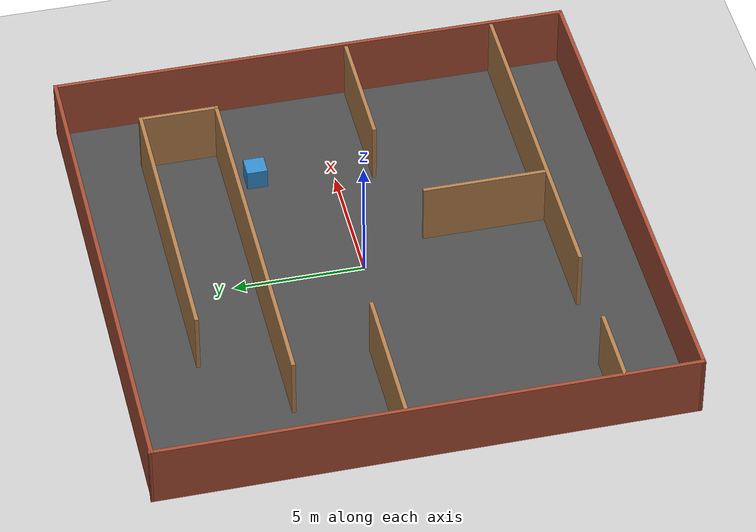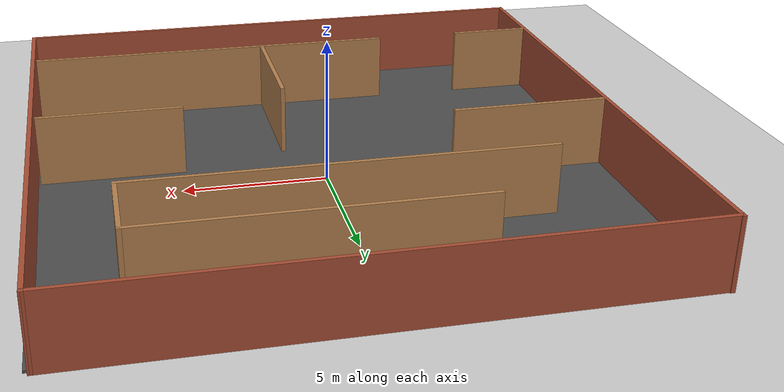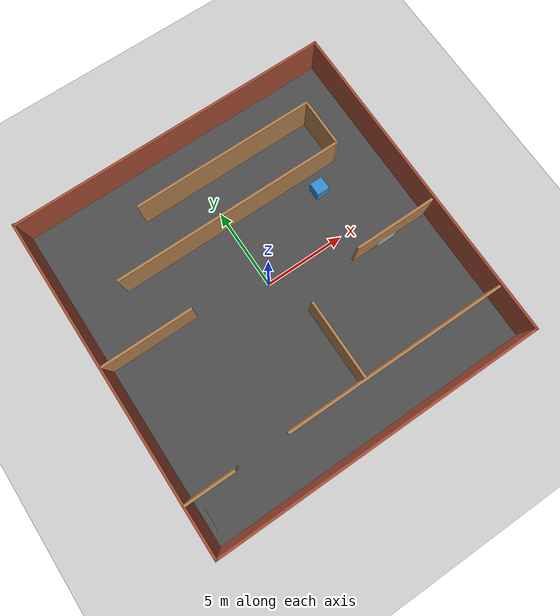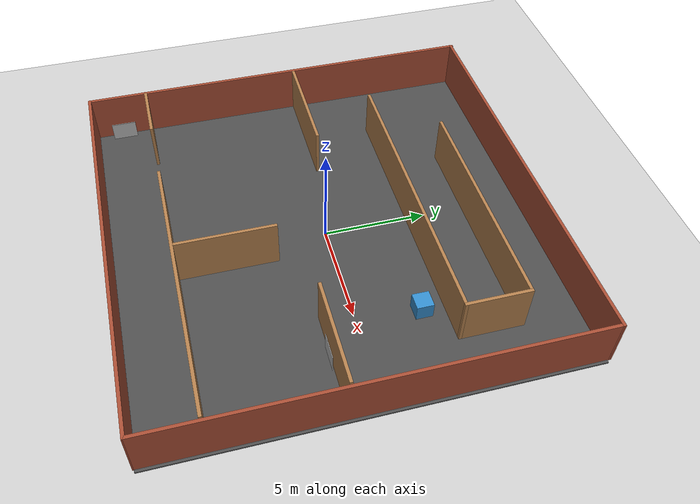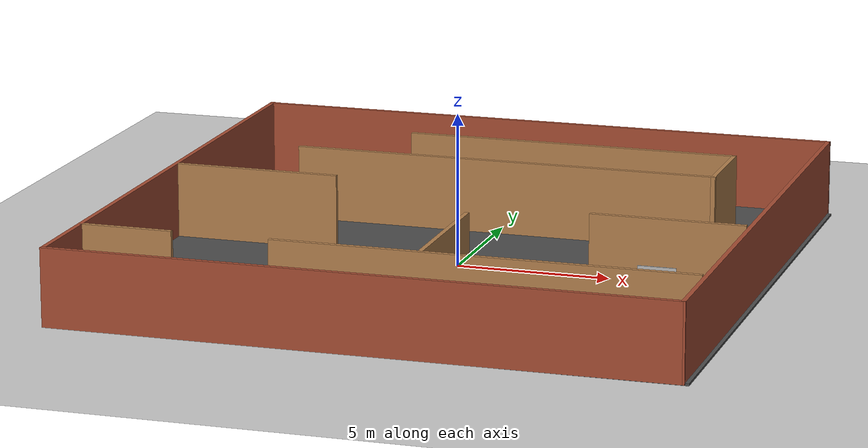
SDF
<sdf version="1.7">
 <world name="default">
  <light name="sun" type="directional">
   <pose>0 0 10 0 -0 0</pose>
   <diffuse>0.8 0.8 0.8 1</diffuse>
   <specular>0.2 0.2 0.2 1</specular>
   <attenuation>
    <range>1000</range>
    <constant>0.9</constant>
    <linear>0.01</linear>
    <quadratic>0.001</quadratic>
   </attenuation>
   <direction>-0.5 0.1 -0.9</direction>
   <spot><inner_angle>0</inner_angle><outer_angle>0</outer_angle><falloff>0</falloff></spot>
  </light>
  <model name="ground_plane">
   <static>1</static>
   <link name="link">
    <collision name="collision">
     <geometry><plane><normal>0 0 1</normal><size>100 100</size></plane></geometry>
     <surface><friction><ode><mu>100</mu><mu2>50</mu2></ode></friction></surface>
    </collision>
    <visual name="visual">
     <cast_shadows>0</cast_shadows>
     <geometry><plane><normal>0 0 1</normal><size>100 100</size></plane></geometry>
     <material>
      <script><uri>file://media/materials/scripts/gazebo.material</uri><name>Gazebo/Grey</name></script>
     </material>
    </visual>
   </link>
  </model>
  <gravity>0 0 -9.8</gravity>
  <magnetic_field>6e-06 2.3e-05 -4.2e-05</magnetic_field>
  <atmosphere type="adiabatic"/>
  <physics name="default_physics" default="0" type="ode">
   <max_step_size>0.001</max_step_size>
   <real_time_factor>1</real_time_factor>
   <real_time_update_rate>1000</real_time_update_rate>
  </physics>
  <scene><ambient>0.4 0.4 0.4 1</ambient><background>0.7 0.7 0.7 1</background><shadows>1</shadows></scene>
  <spherical_coordinates>
   <surface_model>EARTH_WGS84</surface_model>
   <latitude_deg>0</latitude_deg>
   <longitude_deg>0</longitude_deg>
   <elevation>0</elevation>
   <heading_deg>0</heading_deg>
  </spherical_coordinates>
  <model name="Labyrinth_Practice">
   <pose>0.01018 -0.145179 0 0 -0 0</pose>
   <link name="Wall_1">
    <collision name="Wall_1_Collision">
     <geometry><box><size>20.25 0.15 2.5</size></box></geometry>
     <pose>0 0 1.25 0 -0 0</pose>
    </collision>
    <visual name="Wall_1_Visual">
     <pose>0 0 1.25 0 -0 0</pose>
     <geometry><box><size>20.25 0.15 2.5</size></box></geometry>
     <material>
      <script><uri>file://media/materials/scripts/gazebo.material</uri><name>Gazebo/Bricks</name></script>
      <ambient>1 1 1 1</ambient>
     </material>
     <meta><layer>0</layer></meta>
    </visual>
    <pose>9.88982 0.035179 0 0 -0 1.5708</pose>
   </link>
   <link name="Wall_10">
    <collision name="Wall_10_Collision">
     <geometry><box><size>4.75 0.15 2.5</size></box></geometry>
     <pose>0 0 1.25 0 -0 0</pose>
    </collision>
    <visual name="Wall_10_Visual">
     <pose>0 0 1.25 0 -0 0</pose>
     <geometry><box><size>4.75 0.15 2.5</size></box></geometry>
     <material>
      <script><uri>file://media/materials/scripts/gazebo.material</uri><name>Gazebo/Wood</name></script>
      <ambient>1 1 1 1</ambient>
     </material>
     <meta><layer>0</layer></meta>
    </visual>
    <pose>1.06782 -4.75082 0 0 -0 -1.5708</pose>
   </link>
   <link name="Wall_12">
    <collision name="Wall_12_Collision">
     <geometry><box><size>11.25 0.15 2.5</size></box></geometry>
     <pose>0 0 1.25 0 -0 0</pose>
    </collision>
    <visual name="Wall_12_Visual">
     <pose>0 0 1.25 0 -0 0</pose>
     <geometry><box><size>11.25 0.15 2.5</size></box></geometry>
     <material>
      <script><uri>file://media/materials/scripts/gazebo.material</uri><name>Gazebo/Wood</name></script>
      <ambient>1 1 1 1</ambient>
     </material>
     <meta><layer>0</layer></meta>
    </visual>
    <pose>1.78782 7.21718 0 0 -0 0</pose>
   </link>
   <link name="Wall_13">
    <collision name="Wall_13_Collision">
     <geometry><box><size>3.09024 0.15 2.5</size></box></geometry>
     <pose>0 0 1.25 0 -0 0</pose>
    </collision>
    <visual name="Wall_13_Visual">
     <pose>0 0 1.25 0 -0 0</pose>
     <geometry><box><size>3.09024 0.15 2.5</size></box></geometry>
     <material>
      <script><uri>file://media/materials/scripts/gazebo.material</uri><name>Gazebo/Wood</name></script>
      <ambient>1 1 1 1</ambient>
     </material>
     <meta><layer>0</layer></meta>
    </visual>
    <pose>7.33782 5.74718 0 0 -0 -1.5708</pose>
   </link>
   <link name="Wall_14">
    <collision name="Wall_14_Collision">
     <geometry><box><size>14.25 0.15 2.5</size></box></geometry>
     <pose>0 0 1.25 0 -0 0</pose>
    </collision>
    <visual name="Wall_14_Visual">
     <pose>0 0 1.25 0 -0 0</pose>
     <geometry><box><size>14.25 0.15 2.5</size></box></geometry>
     <material>
      <script><uri>file://media/materials/scripts/gazebo.material</uri><name>Gazebo/Wood</name></script>
      <ambient>1 1 1 1</ambient>
     </material>
     <meta><layer>0</layer></meta>
    </visual>
    <pose>0.287943 4.27706 0 0 -0 -3.14158</pose>
   </link>
   <link name="Wall_16">
    <collision name="Wall_16_Collision">
     <geometry><box><size>5.5 0.15 2.5</size></box></geometry>
     <pose>0 0 1.25 0 -0 0</pose>
    </collision>
    <visual name="Wall_16_Visual">
     <pose>0 0 1.25 0 -0 0</pose>
     <geometry><box><size>5.5 0.15 2.5</size></box></geometry>
     <material>
      <script><uri>file://media/materials/scripts/gazebo.material</uri><name>Gazebo/Wood</name></script>
      <ambient>1 1 1 1</ambient>
     </material>
     <meta><layer>0</layer></meta>
    </visual>
    <pose>-7.08218 0.851179 0 0 -0 0</pose>
   </link>
   <link name="Wall_18">
    <collision name="Wall_18_Collision">
     <geometry><box><size>5 0.15 2.5</size></box></geometry>
     <pose>0 0 1.25 0 -0 0</pose>
    </collision>
    <visual name="Wall_18_Visual">
     <pose>0 0 1.25 0 -0 0</pose>
     <geometry><box><size>5 0.15 2.5</size></box></geometry>
     <material>
      <script><uri>file://media/materials/scripts/gazebo.material</uri><name>Gazebo/Wood</name></script>
      <ambient>1 1 1 1</ambient>
     </material>
     <meta><layer>0</layer></meta>
    </visual>
    <pose>7.23782 -1.34282 0 0 -0 0</pose>
   </link>
   <link name="Wall_2">
    <collision name="Wall_2_Collision">
     <geometry><box><size>19.9297 0.15 2.5</size></box></geometry>
     <pose>0 0 1.25 0 -0 0</pose>
    </collision>
    <visual name="Wall_2_Visual">
     <pose>0 0 1.25 0 -0 0</pose>
     <geometry><box><size>19.9297 0.15 2.5</size></box></geometry>
     <material>
      <script><uri>file://media/materials/scripts/gazebo.material</uri><name>Gazebo/Bricks</name></script>
      <ambient>1 1 1 1</ambient>
     </material>
     <meta><layer>0</layer></meta>
    </visual>
    <pose>0 10.05 0 0 -0 -3.13804</pose>
   </link>
   <link name="Wall_3">
    <collision name="Wall_3_Collision">
     <geometry><box><size>20.25 0.15 2.5</size></box></geometry>
     <pose>0 0 1.25 0 -0 0</pose>
    </collision>
    <visual name="Wall_3_Visual">
     <pose>0 0 1.25 0 -0 0</pose>
     <geometry><box><size>20.25 0.15 2.5</size></box></geometry>
     <material>
      <script><uri>file://media/materials/scripts/gazebo.material</uri><name>Gazebo/Bricks</name></script>
      <ambient>1 1 1 1</ambient>
     </material>
     <meta><layer>0</layer></meta>
    </visual>
    <pose>-9.88982 0 0 0 -0 -1.5708</pose>
   </link>
   <link name="Wall_4">
    <collision name="Wall_4_Collision">
     <geometry><box><size>19.9297 0.15 2.5</size></box></geometry>
     <pose>0 0 1.25 0 -0 0</pose>
    </collision>
    <visual name="Wall_4_Visual">
     <pose>0 0 1.25 0 -0 0</pose>
     <geometry><box><size>19.9297 0.15 2.5</size></box></geometry>
     <material>
      <script><uri>file://media/materials/scripts/gazebo.material</uri><name>Gazebo/Bricks</name></script>
      <ambient>1 1 1 1</ambient>
     </material>
     <meta><layer>0</layer></meta>
    </visual>
    <pose>0 -10.05 0 0 -0 0.003557</pose>
   </link>
   <link name="Wall_6">
    <collision name="Wall_6_Collision">
     <geometry><box><size>13.5 0.15 2.5</size></box></geometry>
     <pose>0 0 1.25 0 -0 0</pose>
    </collision>
    <visual name="Wall_6_Visual">
     <pose>0 0 1.25 0 -0 0</pose>
     <geometry><box><size>13.5 0.15 2.5</size></box></geometry>
     <material>
      <script><uri>file://media/materials/scripts/gazebo.material</uri><name>Gazebo/Wood</name></script>
      <ambient>1 1 1 1</ambient>
     </material>
     <meta><layer>0</layer></meta>
    </visual>
    <pose>3.00682 -7.17482 0 0 -0 3.14159</pose>
   </link>
   <link name="Wall_8">
    <collision name="Wall_8_Collision">
     <geometry><box><size>3 0.15 2.5</size></box></geometry>
     <pose>0 0 1.25 0 -0 0</pose>
    </collision>
    <visual name="Wall_8_Visual">
     <pose>0 0 1.25 0 -0 0</pose>
     <geometry><box><size>3 0.15 2.5</size></box></geometry>
     <material>
      <script><uri>file://media/materials/scripts/gazebo.material</uri><name>Gazebo/Wood</name></script>
      <ambient>1 1 1 1</ambient>
     </material>
     <meta><layer>0</layer></meta>
    </visual>
    <pose>-8.38518 -7.17482 0 0 -0 0</pose>
   </link>
   <static>1</static>
  </model>
  <model name="asphalt_plane">
   <static>1</static>
   <link name="link">
    <collision name="collision"><geometry><box><size>20 20 0.1</size></box></geometry></collision>
    <visual name="visual">
     <cast_shadows>0</cast_shadows>
     <geometry><box><size>20 20 0.1</size></box></geometry>
     <material>
      <script>
       <uri>model://asphalt_plane/materials/scripts</uri>
       <uri>model://asphalt_plane/materials/textures</uri>
       <name>vrc/asphalt</name>
      </script>
     </material>
    </visual>
   </link>
   <pose>0.101273 -0.167262 0 0 -0 0</pose>
  </model>
  <model name="wall">
   <link name="link_0">
    <inertial>
     <mass>0.0370544</mass>
     <inertia>
      <ixx>0.0074647</ixx>
      <ixy>0</ixy>
      <ixz>0</ixz>
      <iyy>0.00273036</iyy>
      <iyz>0</iyz>
      <izz>0.00474062</izz>
     </inertia>
    </inertial>
    <visual name="visual">
     <geometry><box><size>0.031883 1.23864 0.93979</size></box></geometry>
     <material>
      <lighting>1</lighting>
      <script>
       <uri>model://wall/materials/scripts</uri>
       <uri>model://wall/materials/textures</uri>
       <name>Labyrinth/Aruco</name>
      </script>
      <shader type="pixel"/>
     </material>
    </visual>
    <collision name="collision">
     <geometry><box><size>0.031883 1.23864 0.93979</size></box></geometry>
     <surface>
      <friction>
       <ode><mu>1</mu><mu2>1</mu2><fdir1>0 0 0</fdir1><slip1>0</slip1><slip2>0</slip2></ode>
       <torsional>
        <coefficient>1</coefficient>
        <patch_radius>0</patch_radius>
        <surface_radius>0</surface_radius>
        <use_patch_radius>1</use_patch_radius>
        <ode><slip>0</slip></ode>
       </torsional>
      </friction>
      <bounce><restitution_coefficient>0</restitution_coefficient><threshold>1e+06</threshold></bounce>
      <contact>
       <collide_without_contact>0</collide_without_contact>
       <collide_without_contact_bitmask>1</collide_without_contact_bitmask>
       <collide_bitmask>1</collide_bitmask>
       <ode>
        <soft_cfm>0</soft_cfm>
        <soft_erp>0.2</soft_erp>
        <kp>1e+13</kp>
        <kd>1</kd>
        <max_vel>0.01</max_vel>
        <min_depth>0</min_depth>
       </ode>
       <bullet>
        <split_impulse>1</split_impulse>
        <split_impulse_penetration_threshold>-0.01</split_impulse_penetration_threshold>
        <soft_cfm>0</soft_cfm>
        <soft_erp>0.2</soft_erp>
        <kp>1e+13</kp>
        <kd>1</kd>
       </bullet>
      </contact>
     </surface>
    </collision>
   </link>
   <static>0</static>
   <pose>-9.50664 -8.76722 0.519895 0 7e-06 -3e-06</pose>
  </model>
  <model name="wall_0">
   <link name="link_0">
    <inertial>
     <mass>0.0370544</mass>
     <inertia>
      <ixx>0.0074647</ixx>
      <ixy>0</ixy>
      <ixz>0</ixz>
      <iyy>0.00273036</iyy>
      <iyz>0</iyz>
      <izz>0.00474062</izz>
     </inertia>
    </inertial>
    <visual name="visual">
     <geometry><box><size>0.031883 1.23864 0.93979</size></box></geometry>
     <material>
      <lighting>1</lighting>
      <script>
       <uri>model://wall_1/materials/scripts</uri>
       <uri>model://wall_1/materials/textures</uri>
       <name>Labyrinth/Aruco_1</name>
      </script>
      <shader type="pixel"/>
     </material>
    </visual>
    <collision name="collision">
     <geometry><box><size>0.031883 1.23864 0.93979</size></box></geometry>
     <surface>
      <friction>
       <ode><mu>1</mu><mu2>1</mu2><fdir1>0 0 0</fdir1><slip1>0</slip1><slip2>0</slip2></ode>
       <torsional>
        <coefficient>1</coefficient>
        <patch_radius>0</patch_radius>
        <surface_radius>0</surface_radius>
        <use_patch_radius>1</use_patch_radius>
        <ode><slip>0</slip></ode>
       </torsional>
      </friction>
      <bounce><restitution_coefficient>0</restitution_coefficient><threshold>1e+06</threshold></bounce>
      <contact>
       <collide_without_contact>0</collide_without_contact>
       <collide_without_contact_bitmask>1</collide_without_contact_bitmask>
       <collide_bitmask>1</collide_bitmask>
       <ode>
        <soft_cfm>0</soft_cfm>
        <soft_erp>0.2</soft_erp>
        <kp>1e+13</kp>
        <kd>1</kd>
        <max_vel>0.01</max_vel>
        <min_depth>0</min_depth>
       </ode>
       <bullet>
        <split_impulse>1</split_impulse>
        <split_impulse_penetration_threshold>-0.01</split_impulse_penetration_threshold>
        <soft_cfm>0</soft_cfm>
        <soft_erp>0.2</soft_erp>
        <kp>1e+13</kp>
        <kd>1</kd>
       </bullet>
      </contact>
     </surface>
    </collision>
   </link>
   <static>0</static>
   <pose>6.95885 -1.63769 0.519895 0 -0 1.56814</pose>
  </model>
  <audio><device>default</device></audio>
  <model name="box_blue">
   <link name="link_1">
    <inertial>
     <mass>1</mass>
     <inertia>
      <ixx>0.166667</ixx>
      <ixy>0</ixy>
      <ixz>0</ixz>
      <iyy>0.166667</iyy>
      <iyz>0</iyz>
      <izz>0.166667</izz>
     </inertia>
    </inertial>
    <visual name="visual">
     <geometry><box><size>0.8 0.8 0.8</size></box></geometry>
     <material>
      <lighting>1</lighting>
      <script><uri>file://media/materials/scripts/gazebo.material</uri><name>Gazebo/Grey</name></script>
      <shader type="pixel"><normal_map>__default__</normal_map></shader>
      <ambient>0.153 0.49 0.745 1</ambient>
      <diffuse>0.2 0.55 0.8 1</diffuse>
      <specular>0.01 0.01 0.01 1</specular>
      <emissive>0 0 0 1</emissive>
     </material>
    </visual>
    <collision name="collision">
     <geometry><box><size>0.8 0.8 0.8</size></box></geometry>
     <surface>
      <friction>
       <ode><mu>1</mu><mu2>1</mu2><fdir1>0 0 0</fdir1><slip1>0</slip1><slip2>0</slip2></ode>
       <torsional>
        <coefficient>1</coefficient>
        <patch_radius>0</patch_radius>
        <surface_radius>0</surface_radius>
        <use_patch_radius>1</use_patch_radius>
        <ode><slip>0</slip></ode>
       </torsional>
      </friction>
      <bounce><restitution_coefficient>0</restitution_coefficient><threshold>1e+06</threshold></bounce>
      <contact>
       <collide_without_contact>0</collide_without_contact>
       <collide_without_contact_bitmask>1</collide_without_contact_bitmask>
       <collide_bitmask>1</collide_bitmask>
       <ode>
        <soft_cfm>0</soft_cfm>
        <soft_erp>0.2</soft_erp>
        <kp>1e+13</kp>
        <kd>1</kd>
        <max_vel>0.01</max_vel>
        <min_depth>0</min_depth>
       </ode>
       <bullet>
        <split_impulse>1</split_impulse>
        <split_impulse_penetration_threshold>-0.01</split_impulse_penetration_threshold>
        <soft_cfm>0</soft_cfm>
        <soft_erp>0.2</soft_erp>
        <kp>1e+13</kp>
        <kd>1</kd>
       </bullet>
      </contact>
     </surface>
    </collision>
   </link>
   <static>0</static>
   <pose>5.56357 3.00838 0.449995 -8e-06 -4e-06 -0.001431</pose>
  </model>
 </world>
</sdf>
